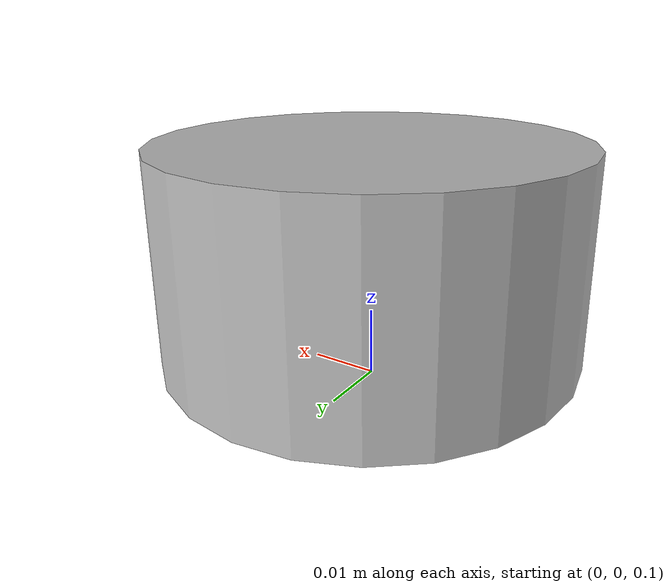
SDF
<?xml version="1.0" ?>
<sdf version="1.9">
  <model name="lidar_test">
    <static>false</static>

    <link name="lidar_link">
      <pose>0 0 0.12 0 0 0</pose>

      <collision name="collision">
        <geometry>
          <cylinder>
            <radius>0.03</radius>
            <length>0.03</length>
          </cylinder>
        </geometry>
      </collision>

      <visual name="visual">
        <geometry>
          <cylinder>
            <radius>0.03</radius>
            <length>0.03</length>
          </cylinder>
        </geometry>
      </visual>

      <sensor name="lidar" type="ray">
        <always_on>true</always_on>
        <update_rate>20</update_rate>

        <ray>
          <scan>
            <horizontal>
              <samples>720</samples>
              <min_angle>-3.14159</min_angle>
              <max_angle>3.14159</max_angle>
            </horizontal>
          </scan>
          <range>
            <min>0.05</min>
            <max>6.0</max>
          </range>
        </ray>

        <topic>/scan</topic>
      </sensor>
    </link>
  </model>
</sdf>
